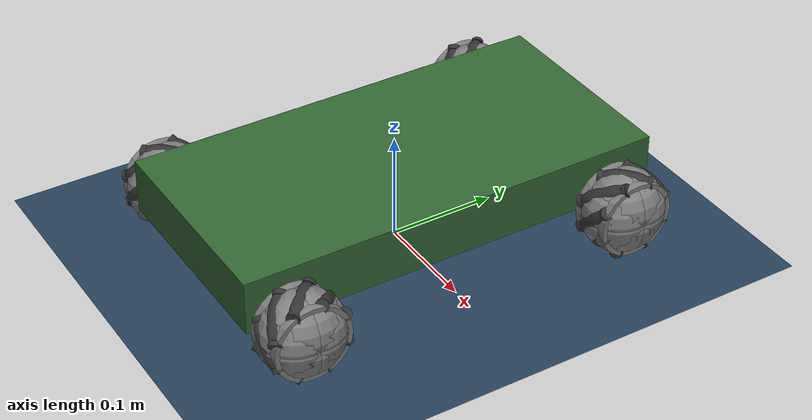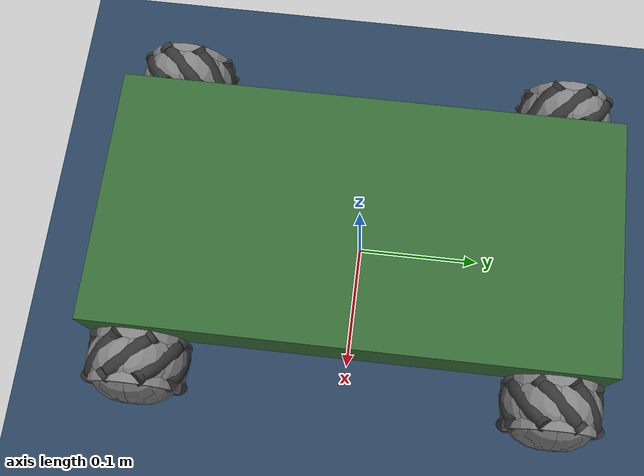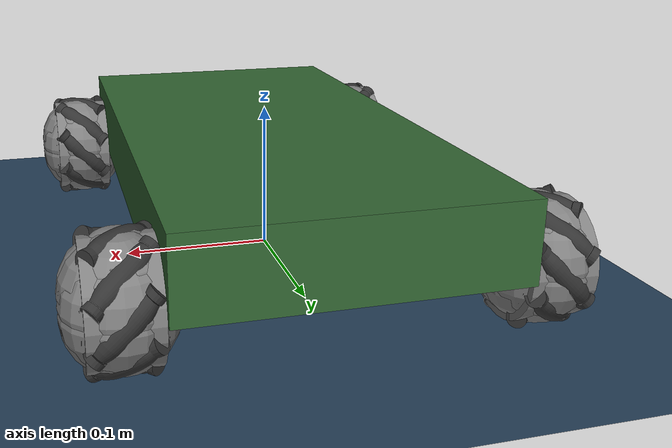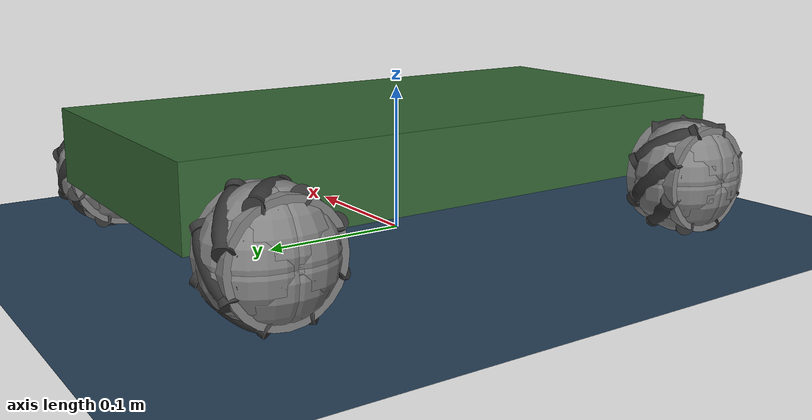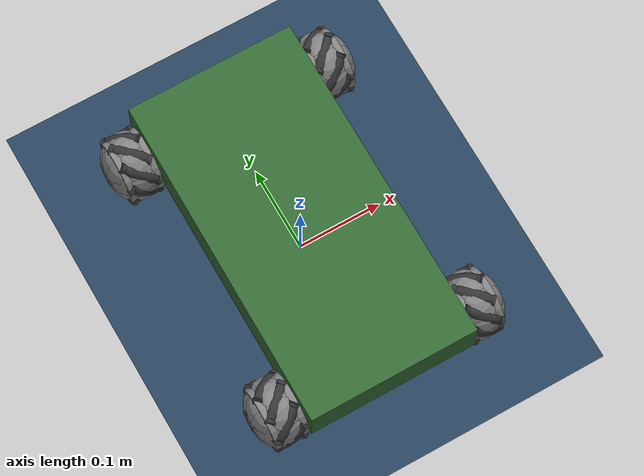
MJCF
<mujoco model="MuJoCo Model">
  <compiler angle="radian"/>

  <visual>
    <scale jointlength="1.6" jointwidth="0.12"/>
  </visual>

  <statistic extent="0.6" center="0 0 0.3"/>

  <default>
    <default class="w1-main"/>
    <default class="w2-main"/>
    <default class="w3-main"/>
    <default class="w4-main"/>
  </default>

  <asset>
    <texture type="skybox" name="//unnamed_texture_0" builtin="flat" rgb1="1 1 1" rgb2="1 1 1" width="512" height="3072"/>
    <texture type="2d" name="groundplane" builtin="checker" mark="edge" rgb1="0.2 0.3 0.4" rgb2="0.1 0.2 0.3" markrgb="0.8 0.8 0.8" width="300" height="300"/>
    <material name="groundplane" texture="groundplane" texuniform="true" texrepeat="5 5" reflectance="0.2"/>
    <mesh name="mesh1" file="meshes\mecanum.stl" scale="0.78 0.78 0.78"/>
    <mesh name="mesh2" file="meshes\mecanum.stl" scale="0.78 0.78 -0.78"/>
  </asset>

  <worldbody>
    <geom name="floor" size="0 0 0.125" type="plane" condim="1" material="groundplane"/>
    <light name="//unnamed_light_0" pos="0 0 3" dir="0 0.624695 -0.780869" directional="true" castshadow="false"/>
    <body name="box" pos="0 0 0.065">
      <joint name="slidex" pos="0 0 0" axis="1 0 0" type="slide"/>
      <joint name="slidey" pos="0 0 0" axis="0 1 0" type="slide"/>
      <joint name="slidez" pos="0 0 0" axis="0 0 1" type="slide"/>
      <joint name="phi" pos="0 0 0" axis="0 0 1"/>
      <geom size="0.1 0.2 0.025" type="box" rgba="0.2 0.4 0.2 1"/>
      <site name="box_center" pos="0 0 0"/>
      <site pos="0.12 0.16 -0.025" quat="0.707107 0 0 -0.707107"/>
      <site pos="-0.12 0.16 -0.025" quat="0.707107 0 0 -0.707107"/>
      <site pos="-0.12 -0.16 -0.025" quat="0.707107 0 0 -0.707107"/>
      <site pos="0.12 -0.16 -0.025" quat="0.707107 0 0 -0.707107"/>
      <body name="w1-hub" pos="0.12 0.16 -0.025" quat="0.707107 0 0 -0.707107">
        <joint name="w1-hub" pos="0 0 0" axis="0 1 0"/>
        <geom size="0.036 0.02" quat="0.707107 0.707107 0 0" type="cylinder" conaffinity="0" group="1"/>
        <geom quat="0.707107 0.707107 0 0" type="mesh" group="2" rgba="0.2 0.2 0.2 1" mesh="mesh1"/>
        <body name="w1-roller_0" pos="0.00682843 0 0.00282843">
          <joint name="w1-slip_0" pos="0 0 0" axis="-0.270598 0.707107 0.653281" limited="false" actuatorfrclimited="false"/>
          <geom size="0.032" group="1"/>
        </body>
        <body name="w1-roller_1" pos="0.00282843 0 0.00682843">
          <joint name="w1-slip_1" pos="0 0 0" axis="-0.653281 0.707107 0.270598" limited="false" actuatorfrclimited="false"/>
          <geom size="0.032" group="1"/>
        </body>
        <body name="w1-roller_2" pos="-0.00282843 0 0.00682843">
          <joint name="w1-slip_2" pos="0 0 0" axis="-0.653281 0.707107 -0.270598" limited="false" actuatorfrclimited="false"/>
          <geom size="0.032" group="1"/>
        </body>
        <body name="w1-roller_3" pos="-0.00682843 0 0.00282843">
          <joint name="w1-slip_3" pos="0 0 0" axis="-0.270598 0.707107 -0.653281" limited="false" actuatorfrclimited="false"/>
          <geom size="0.032" group="1"/>
        </body>
        <body name="w1-roller_4" pos="-0.00682843 0 -0.00282843">
          <joint name="w1-slip_4" pos="0 0 0" axis="0.270598 0.707107 -0.653281" limited="false" actuatorfrclimited="false"/>
          <geom size="0.032" group="1"/>
        </body>
        <body name="w1-roller_5" pos="-0.00282843 0 -0.00682843">
          <joint name="w1-slip_5" pos="0 0 0" axis="0.653281 0.707107 -0.270598" limited="false" actuatorfrclimited="false"/>
          <geom size="0.032" group="1"/>
        </body>
        <body name="w1-roller_6" pos="0.00282843 0 -0.00682843">
          <joint name="w1-slip_6" pos="0 0 0" axis="0.653281 0.707107 0.270598" limited="false" actuatorfrclimited="false"/>
          <geom size="0.032" group="1"/>
        </body>
        <body name="w1-roller_7" pos="0.00682843 0 -0.00282843">
          <joint name="w1-slip_7" pos="0 0 0" axis="0.270598 0.707107 0.653281" limited="false" actuatorfrclimited="false"/>
          <geom size="0.032" group="1"/>
        </body>
      </body>
      <body name="w2-hub" pos="-0.12 0.16 -0.025" quat="0.707107 0 0 -0.707107">
        <joint name="w2-hub" pos="0 0 0" axis="0 1 0"/>
        <geom size="0.036 0.02" quat="0.707107 0.707107 0 0" type="cylinder" conaffinity="0" group="1"/>
        <geom quat="0.707107 0.707107 0 0" type="mesh" group="2" rgba="0.2 0.2 0.2 1" mesh="mesh2"/>
        <body name="w2-roller_0" pos="0.00682843 0 -0.00282843">
          <joint name="w2-slip_0" pos="0 0 0" axis="-0.270598 0.707107 -0.653281" limited="false" actuatorfrclimited="false"/>
          <geom size="0.032" group="1"/>
        </body>
        <body name="w2-roller_1" pos="0.00682843 0 0.00282843">
          <joint name="w2-slip_1" pos="0 0 0" axis="0.270598 0.707107 -0.653281" limited="false" actuatorfrclimited="false"/>
          <geom size="0.032" group="1"/>
        </body>
        <body name="w2-roller_2" pos="0.00282843 0 0.00682843">
          <joint name="w2-slip_2" pos="0 0 0" axis="0.653281 0.707107 -0.270598" limited="false" actuatorfrclimited="false"/>
          <geom size="0.032" group="1"/>
        </body>
        <body name="w2-roller_3" pos="-0.00282843 0 0.00682843">
          <joint name="w2-slip_3" pos="0 0 0" axis="0.653281 0.707107 0.270598" limited="false" actuatorfrclimited="false"/>
          <geom size="0.032" group="1"/>
        </body>
        <body name="w2-roller_4" pos="-0.00682843 0 0.00282843">
          <joint name="w2-slip_4" pos="0 0 0" axis="0.270598 0.707107 0.653281" limited="false" actuatorfrclimited="false"/>
          <geom size="0.032" group="1"/>
        </body>
        <body name="w2-roller_5" pos="-0.00682843 0 -0.00282843">
          <joint name="w2-slip_5" pos="0 0 0" axis="-0.270598 0.707107 0.653281" limited="false" actuatorfrclimited="false"/>
          <geom size="0.032" group="1"/>
        </body>
        <body name="w2-roller_6" pos="-0.00282843 0 -0.00682843">
          <joint name="w2-slip_6" pos="0 0 0" axis="-0.653281 0.707107 0.270598" limited="false" actuatorfrclimited="false"/>
          <geom size="0.032" group="1"/>
        </body>
        <body name="w2-roller_7" pos="0.00282843 0 -0.00682843">
          <joint name="w2-slip_7" pos="0 0 0" axis="-0.653281 0.707107 -0.270598" limited="false" actuatorfrclimited="false"/>
          <geom size="0.032" group="1"/>
        </body>
      </body>
      <body name="w3-hub" pos="-0.12 -0.16 -0.025" quat="0.707107 0 0 -0.707107">
        <joint name="w3-hub" pos="0 0 0" axis="0 1 0"/>
        <geom size="0.036 0.02" quat="0.707107 0.707107 0 0" type="cylinder" conaffinity="0" group="1"/>
        <geom quat="0.707107 0.707107 0 0" type="mesh" group="2" rgba="0.2 0.2 0.2 1" mesh="mesh1"/>
        <body name="w3-roller_0" pos="0.00682843 0 0.00282843">
          <joint name="w3-slip_0" pos="0 0 0" axis="-0.270598 0.707107 0.653281" limited="false" actuatorfrclimited="false"/>
          <geom size="0.032" group="1"/>
        </body>
        <body name="w3-roller_1" pos="0.00282843 0 0.00682843">
          <joint name="w3-slip_1" pos="0 0 0" axis="-0.653281 0.707107 0.270598" limited="false" actuatorfrclimited="false"/>
          <geom size="0.032" group="1"/>
        </body>
        <body name="w3-roller_2" pos="-0.00282843 0 0.00682843">
          <joint name="w3-slip_2" pos="0 0 0" axis="-0.653281 0.707107 -0.270598" limited="false" actuatorfrclimited="false"/>
          <geom size="0.032" group="1"/>
        </body>
        <body name="w3-roller_3" pos="-0.00682843 0 0.00282843">
          <joint name="w3-slip_3" pos="0 0 0" axis="-0.270598 0.707107 -0.653281" limited="false" actuatorfrclimited="false"/>
          <geom size="0.032" group="1"/>
        </body>
        <body name="w3-roller_4" pos="-0.00682843 0 -0.00282843">
          <joint name="w3-slip_4" pos="0 0 0" axis="0.270598 0.707107 -0.653281" limited="false" actuatorfrclimited="false"/>
          <geom size="0.032" group="1"/>
        </body>
        <body name="w3-roller_5" pos="-0.00282843 0 -0.00682843">
          <joint name="w3-slip_5" pos="0 0 0" axis="0.653281 0.707107 -0.270598" limited="false" actuatorfrclimited="false"/>
          <geom size="0.032" group="1"/>
        </body>
        <body name="w3-roller_6" pos="0.00282843 0 -0.00682843">
          <joint name="w3-slip_6" pos="0 0 0" axis="0.653281 0.707107 0.270598" limited="false" actuatorfrclimited="false"/>
          <geom size="0.032" group="1"/>
        </body>
        <body name="w3-roller_7" pos="0.00682843 0 -0.00282843">
          <joint name="w3-slip_7" pos="0 0 0" axis="0.270598 0.707107 0.653281" limited="false" actuatorfrclimited="false"/>
          <geom size="0.032" group="1"/>
        </body>
      </body>
      <body name="w4-hub" pos="0.12 -0.16 -0.025" quat="0.707107 0 0 -0.707107">
        <joint name="w4-hub" pos="0 0 0" axis="0 1 0"/>
        <geom size="0.036 0.02" quat="0.707107 0.707107 0 0" type="cylinder" conaffinity="0" group="1"/>
        <geom quat="0.707107 0.707107 0 0" type="mesh" group="2" rgba="0.2 0.2 0.2 1" mesh="mesh2"/>
        <body name="w4-roller_0" pos="0.00682843 0 -0.00282843">
          <joint name="w4-slip_0" pos="0 0 0" axis="-0.270598 0.707107 -0.653281" limited="false" actuatorfrclimited="false"/>
          <geom size="0.032" group="1"/>
        </body>
        <body name="w4-roller_1" pos="0.00682843 0 0.00282843">
          <joint name="w4-slip_1" pos="0 0 0" axis="0.270598 0.707107 -0.653281" limited="false" actuatorfrclimited="false"/>
          <geom size="0.032" group="1"/>
        </body>
        <body name="w4-roller_2" pos="0.00282843 0 0.00682843">
          <joint name="w4-slip_2" pos="0 0 0" axis="0.653281 0.707107 -0.270598" limited="false" actuatorfrclimited="false"/>
          <geom size="0.032" group="1"/>
        </body>
        <body name="w4-roller_3" pos="-0.00282843 0 0.00682843">
          <joint name="w4-slip_3" pos="0 0 0" axis="0.653281 0.707107 0.270598" limited="false" actuatorfrclimited="false"/>
          <geom size="0.032" group="1"/>
        </body>
        <body name="w4-roller_4" pos="-0.00682843 0 0.00282843">
          <joint name="w4-slip_4" pos="0 0 0" axis="0.270598 0.707107 0.653281" limited="false" actuatorfrclimited="false"/>
          <geom size="0.032" group="1"/>
        </body>
        <body name="w4-roller_5" pos="-0.00682843 0 -0.00282843">
          <joint name="w4-slip_5" pos="0 0 0" axis="-0.270598 0.707107 0.653281" limited="false" actuatorfrclimited="false"/>
          <geom size="0.032" group="1"/>
        </body>
        <body name="w4-roller_6" pos="-0.00282843 0 -0.00682843">
          <joint name="w4-slip_6" pos="0 0 0" axis="-0.653281 0.707107 0.270598" limited="false" actuatorfrclimited="false"/>
          <geom size="0.032" group="1"/>
        </body>
        <body name="w4-roller_7" pos="0.00282843 0 -0.00682843">
          <joint name="w4-slip_7" pos="0 0 0" axis="-0.653281 0.707107 -0.270598" limited="false" actuatorfrclimited="false"/>
          <geom size="0.032" group="1"/>
        </body>
      </body>
    </body>
  </worldbody>

  <contact>
    <exclude name="exclude_w1-hub_world" body1="world" body2="w1-hub"/>
    <exclude name="exclude_world_w2-hub" body1="world" body2="w2-hub"/>
    <exclude name="exclude_w3-hub_world" body1="world" body2="w3-hub"/>
    <exclude name="exclude_world_w4-hub" body1="world" body2="w4-hub"/>
    <exclude name="exclude_box_w1-hub" body1="box" body2="w1-hub"/>
    <exclude name="exclude_box_w1-roller_0" body1="box" body2="w1-roller_0"/>
    <exclude name="exclude_box_w1-roller_1" body1="box" body2="w1-roller_1"/>
    <exclude name="exclude_box_w1-roller_2" body1="box" body2="w1-roller_2"/>
    <exclude name="exclude_box_w1-roller_3" body1="box" body2="w1-roller_3"/>
    <exclude name="exclude_box_w1-roller_4" body1="box" body2="w1-roller_4"/>
    <exclude name="exclude_box_w1-roller_5" body1="box" body2="w1-roller_5"/>
    <exclude name="exclude_box_w1-roller_6" body1="box" body2="w1-roller_6"/>
    <exclude name="exclude_box_w1-roller_7" body1="box" body2="w1-roller_7"/>
    <exclude name="exclude_box_w2-hub" body1="box" body2="w2-hub"/>
    <exclude name="exclude_w2-roller_0_box" body1="box" body2="w2-roller_0"/>
    <exclude name="exclude_w2-roller_1_box" body1="box" body2="w2-roller_1"/>
    <exclude name="exclude_w2-roller_2_box" body1="box" body2="w2-roller_2"/>
    <exclude name="exclude_w2-roller_3_box" body1="box" body2="w2-roller_3"/>
    <exclude name="exclude_w2-roller_4_box" body1="box" body2="w2-roller_4"/>
    <exclude name="exclude_w2-roller_5_box" body1="box" body2="w2-roller_5"/>
    <exclude name="exclude_w2-roller_6_box" body1="box" body2="w2-roller_6"/>
    <exclude name="exclude_w2-roller_7_box" body1="box" body2="w2-roller_7"/>
    <exclude name="exclude_w3-hub_box" body1="box" body2="w3-hub"/>
    <exclude name="exclude_w3-roller_0_box" body1="box" body2="w3-roller_0"/>
    <exclude name="exclude_w3-roller_1_box" body1="box" body2="w3-roller_1"/>
    <exclude name="exclude_w3-roller_2_box" body1="box" body2="w3-roller_2"/>
    <exclude name="exclude_w3-roller_3_box" body1="box" body2="w3-roller_3"/>
    <exclude name="exclude_w3-roller_4_box" body1="box" body2="w3-roller_4"/>
    <exclude name="exclude_w3-roller_5_box" body1="box" body2="w3-roller_5"/>
    <exclude name="exclude_w3-roller_6_box" body1="box" body2="w3-roller_6"/>
    <exclude name="exclude_box_w3-roller_7" body1="box" body2="w3-roller_7"/>
    <exclude name="exclude_w4-hub_box" body1="box" body2="w4-hub"/>
    <exclude name="exclude_w4-roller_0_box" body1="box" body2="w4-roller_0"/>
    <exclude name="exclude_w4-roller_1_box" body1="box" body2="w4-roller_1"/>
    <exclude name="exclude_w4-roller_2_box" body1="box" body2="w4-roller_2"/>
    <exclude name="exclude_w4-roller_3_box" body1="box" body2="w4-roller_3"/>
    <exclude name="exclude_w4-roller_4_box" body1="box" body2="w4-roller_4"/>
    <exclude name="exclude_w4-roller_5_box" body1="box" body2="w4-roller_5"/>
    <exclude name="exclude_w4-roller_6_box" body1="box" body2="w4-roller_6"/>
    <exclude name="exclude_box_w4-roller_7" body1="box" body2="w4-roller_7"/>
    <exclude name="exclude_w1-roller_0_w1-hub" body1="w1-hub" body2="w1-roller_0"/>
    <exclude name="exclude_w1-roller_1_w1-hub" body1="w1-hub" body2="w1-roller_1"/>
    <exclude name="exclude_w1-roller_2_w1-hub" body1="w1-hub" body2="w1-roller_2"/>
    <exclude name="exclude_w1-roller_3_w1-hub" body1="w1-hub" body2="w1-roller_3"/>
    <exclude name="exclude_w1-roller_4_w1-hub" body1="w1-hub" body2="w1-roller_4"/>
    <exclude name="exclude_w1-roller_5_w1-hub" body1="w1-hub" body2="w1-roller_5"/>
    <exclude name="exclude_w1-roller_6_w1-hub" body1="w1-hub" body2="w1-roller_6"/>
    <exclude name="exclude_w1-hub_w1-roller_7" body1="w1-hub" body2="w1-roller_7"/>
    <exclude name="exclude_w1-roller_0_w1-roller_1" body1="w1-roller_0" body2="w1-roller_1"/>
    <exclude name="exclude_w1-roller_2_w1-roller_0" body1="w1-roller_0" body2="w1-roller_2"/>
    <exclude name="exclude_w1-roller_0_w1-roller_3" body1="w1-roller_0" body2="w1-roller_3"/>
    <exclude name="exclude_w1-roller_0_w1-roller_4" body1="w1-roller_0" body2="w1-roller_4"/>
    <exclude name="exclude_w1-roller_0_w1-roller_5" body1="w1-roller_0" body2="w1-roller_5"/>
    <exclude name="exclude_w1-roller_0_w1-roller_6" body1="w1-roller_0" body2="w1-roller_6"/>
    <exclude name="exclude_w1-roller_0_w1-roller_7" body1="w1-roller_0" body2="w1-roller_7"/>
    <exclude name="exclude_w1-roller_2_w1-roller_1" body1="w1-roller_1" body2="w1-roller_2"/>
    <exclude name="exclude_w1-roller_1_w1-roller_3" body1="w1-roller_1" body2="w1-roller_3"/>
    <exclude name="exclude_w1-roller_1_w1-roller_4" body1="w1-roller_1" body2="w1-roller_4"/>
    <exclude name="exclude_w1-roller_1_w1-roller_5" body1="w1-roller_1" body2="w1-roller_5"/>
    <exclude name="exclude_w1-roller_1_w1-roller_6" body1="w1-roller_1" body2="w1-roller_6"/>
    <exclude name="exclude_w1-roller_1_w1-roller_7" body1="w1-roller_1" body2="w1-roller_7"/>
    <exclude name="exclude_w1-roller_2_w1-roller_3" body1="w1-roller_2" body2="w1-roller_3"/>
    <exclude name="exclude_w1-roller_2_w1-roller_4" body1="w1-roller_2" body2="w1-roller_4"/>
    <exclude name="exclude_w1-roller_2_w1-roller_5" body1="w1-roller_2" body2="w1-roller_5"/>
    <exclude name="exclude_w1-roller_2_w1-roller_6" body1="w1-roller_2" body2="w1-roller_6"/>
    <exclude name="exclude_w1-roller_2_w1-roller_7" body1="w1-roller_2" body2="w1-roller_7"/>
    <exclude name="exclude_w1-roller_3_w1-roller_4" body1="w1-roller_3" body2="w1-roller_4"/>
    <exclude name="exclude_w1-roller_3_w1-roller_5" body1="w1-roller_3" body2="w1-roller_5"/>
    <exclude name="exclude_w1-roller_3_w1-roller_6" body1="w1-roller_3" body2="w1-roller_6"/>
    <exclude name="exclude_w1-roller_3_w1-roller_7" body1="w1-roller_3" body2="w1-roller_7"/>
    <exclude name="exclude_w1-roller_4_w1-roller_5" body1="w1-roller_4" body2="w1-roller_5"/>
    <exclude name="exclude_w1-roller_4_w1-roller_6" body1="w1-roller_4" body2="w1-roller_6"/>
    <exclude name="exclude_w1-roller_4_w1-roller_7" body1="w1-roller_4" body2="w1-roller_7"/>
    <exclude name="exclude_w1-roller_6_w1-roller_5" body1="w1-roller_5" body2="w1-roller_6"/>
    <exclude name="exclude_w1-roller_5_w1-roller_7" body1="w1-roller_5" body2="w1-roller_7"/>
    <exclude name="exclude_w1-roller_6_w1-roller_7" body1="w1-roller_6" body2="w1-roller_7"/>
    <exclude name="exclude_w2-roller_0_w2-hub" body1="w2-hub" body2="w2-roller_0"/>
    <exclude name="exclude_w2-roller_1_w2-hub" body1="w2-hub" body2="w2-roller_1"/>
    <exclude name="exclude_w2-roller_2_w2-hub" body1="w2-hub" body2="w2-roller_2"/>
    <exclude name="exclude_w2-roller_3_w2-hub" body1="w2-hub" body2="w2-roller_3"/>
    <exclude name="exclude_w2-roller_4_w2-hub" body1="w2-hub" body2="w2-roller_4"/>
    <exclude name="exclude_w2-roller_5_w2-hub" body1="w2-hub" body2="w2-roller_5"/>
    <exclude name="exclude_w2-roller_6_w2-hub" body1="w2-hub" body2="w2-roller_6"/>
    <exclude name="exclude_w2-roller_7_w2-hub" body1="w2-hub" body2="w2-roller_7"/>
    <exclude name="exclude_w2-roller_1_w2-roller_0" body1="w2-roller_0" body2="w2-roller_1"/>
    <exclude name="exclude_w2-roller_2_w2-roller_0" body1="w2-roller_0" body2="w2-roller_2"/>
    <exclude name="exclude_w2-roller_3_w2-roller_0" body1="w2-roller_0" body2="w2-roller_3"/>
    <exclude name="exclude_w2-roller_4_w2-roller_0" body1="w2-roller_0" body2="w2-roller_4"/>
    <exclude name="exclude_w2-roller_0_w2-roller_5" body1="w2-roller_0" body2="w2-roller_5"/>
    <exclude name="exclude_w2-roller_6_w2-roller_0" body1="w2-roller_0" body2="w2-roller_6"/>
    <exclude name="exclude_w2-roller_7_w2-roller_0" body1="w2-roller_0" body2="w2-roller_7"/>
    <exclude name="exclude_w2-roller_1_w2-roller_2" body1="w2-roller_1" body2="w2-roller_2"/>
    <exclude name="exclude_w2-roller_1_w2-roller_3" body1="w2-roller_1" body2="w2-roller_3"/>
    <exclude name="exclude_w2-roller_1_w2-roller_4" body1="w2-roller_1" body2="w2-roller_4"/>
    <exclude name="exclude_w2-roller_1_w2-roller_5" body1="w2-roller_1" body2="w2-roller_5"/>
    <exclude name="exclude_w2-roller_1_w2-roller_6" body1="w2-roller_1" body2="w2-roller_6"/>
    <exclude name="exclude_w2-roller_1_w2-roller_7" body1="w2-roller_1" body2="w2-roller_7"/>
    <exclude name="exclude_w2-roller_2_w2-roller_3" body1="w2-roller_2" body2="w2-roller_3"/>
    <exclude name="exclude_w2-roller_2_w2-roller_4" body1="w2-roller_2" body2="w2-roller_4"/>
    <exclude name="exclude_w2-roller_2_w2-roller_5" body1="w2-roller_2" body2="w2-roller_5"/>
    <exclude name="exclude_w2-roller_2_w2-roller_6" body1="w2-roller_2" body2="w2-roller_6"/>
    <exclude name="exclude_w2-roller_7_w2-roller_2" body1="w2-roller_2" body2="w2-roller_7"/>
    <exclude name="exclude_w2-roller_3_w2-roller_4" body1="w2-roller_3" body2="w2-roller_4"/>
    <exclude name="exclude_w2-roller_3_w2-roller_5" body1="w2-roller_3" body2="w2-roller_5"/>
    <exclude name="exclude_w2-roller_3_w2-roller_6" body1="w2-roller_3" body2="w2-roller_6"/>
    <exclude name="exclude_w2-roller_7_w2-roller_3" body1="w2-roller_3" body2="w2-roller_7"/>
    <exclude name="exclude_w2-roller_4_w2-roller_5" body1="w2-roller_4" body2="w2-roller_5"/>
    <exclude name="exclude_w2-roller_4_w2-roller_6" body1="w2-roller_4" body2="w2-roller_6"/>
    <exclude name="exclude_w2-roller_7_w2-roller_4" body1="w2-roller_4" body2="w2-roller_7"/>
    <exclude name="exclude_w2-roller_6_w2-roller_5" body1="w2-roller_5" body2="w2-roller_6"/>
    <exclude name="exclude_w2-roller_7_w2-roller_5" body1="w2-roller_5" body2="w2-roller_7"/>
    <exclude name="exclude_w2-roller_7_w2-roller_6" body1="w2-roller_6" body2="w2-roller_7"/>
    <exclude name="exclude_w3-hub_w3-roller_0" body1="w3-hub" body2="w3-roller_0"/>
    <exclude name="exclude_w3-hub_w3-roller_1" body1="w3-hub" body2="w3-roller_1"/>
    <exclude name="exclude_w3-hub_w3-roller_2" body1="w3-hub" body2="w3-roller_2"/>
    <exclude name="exclude_w3-hub_w3-roller_3" body1="w3-hub" body2="w3-roller_3"/>
    <exclude name="exclude_w3-hub_w3-roller_4" body1="w3-hub" body2="w3-roller_4"/>
    <exclude name="exclude_w3-hub_w3-roller_5" body1="w3-hub" body2="w3-roller_5"/>
    <exclude name="exclude_w3-hub_w3-roller_6" body1="w3-hub" body2="w3-roller_6"/>
    <exclude name="exclude_w3-hub_w3-roller_7" body1="w3-hub" body2="w3-roller_7"/>
    <exclude name="exclude_w3-roller_1_w3-roller_0" body1="w3-roller_0" body2="w3-roller_1"/>
    <exclude name="exclude_w3-roller_2_w3-roller_0" body1="w3-roller_0" body2="w3-roller_2"/>
    <exclude name="exclude_w3-roller_3_w3-roller_0" body1="w3-roller_0" body2="w3-roller_3"/>
    <exclude name="exclude_w3-roller_4_w3-roller_0" body1="w3-roller_0" body2="w3-roller_4"/>
    <exclude name="exclude_w3-roller_0_w3-roller_5" body1="w3-roller_0" body2="w3-roller_5"/>
    <exclude name="exclude_w3-roller_0_w3-roller_6" body1="w3-roller_0" body2="w3-roller_6"/>
    <exclude name="exclude_w3-roller_0_w3-roller_7" body1="w3-roller_0" body2="w3-roller_7"/>
    <exclude name="exclude_w3-roller_1_w3-roller_2" body1="w3-roller_1" body2="w3-roller_2"/>
    <exclude name="exclude_w3-roller_1_w3-roller_3" body1="w3-roller_1" body2="w3-roller_3"/>
    <exclude name="exclude_w3-roller_1_w3-roller_4" body1="w3-roller_1" body2="w3-roller_4"/>
    <exclude name="exclude_w3-roller_1_w3-roller_5" body1="w3-roller_1" body2="w3-roller_5"/>
    <exclude name="exclude_w3-roller_1_w3-roller_6" body1="w3-roller_1" body2="w3-roller_6"/>
    <exclude name="exclude_w3-roller_1_w3-roller_7" body1="w3-roller_1" body2="w3-roller_7"/>
    <exclude name="exclude_w3-roller_2_w3-roller_3" body1="w3-roller_2" body2="w3-roller_3"/>
    <exclude name="exclude_w3-roller_2_w3-roller_4" body1="w3-roller_2" body2="w3-roller_4"/>
    <exclude name="exclude_w3-roller_2_w3-roller_5" body1="w3-roller_2" body2="w3-roller_5"/>
    <exclude name="exclude_w3-roller_2_w3-roller_6" body1="w3-roller_2" body2="w3-roller_6"/>
    <exclude name="exclude_w3-roller_2_w3-roller_7" body1="w3-roller_2" body2="w3-roller_7"/>
    <exclude name="exclude_w3-roller_3_w3-roller_4" body1="w3-roller_3" body2="w3-roller_4"/>
    <exclude name="exclude_w3-roller_3_w3-roller_5" body1="w3-roller_3" body2="w3-roller_5"/>
    <exclude name="exclude_w3-roller_3_w3-roller_6" body1="w3-roller_3" body2="w3-roller_6"/>
    <exclude name="exclude_w3-roller_3_w3-roller_7" body1="w3-roller_3" body2="w3-roller_7"/>
    <exclude name="exclude_w3-roller_4_w3-roller_5" body1="w3-roller_4" body2="w3-roller_5"/>
    <exclude name="exclude_w3-roller_4_w3-roller_6" body1="w3-roller_4" body2="w3-roller_6"/>
    <exclude name="exclude_w3-roller_4_w3-roller_7" body1="w3-roller_4" body2="w3-roller_7"/>
    <exclude name="exclude_w3-roller_6_w3-roller_5" body1="w3-roller_5" body2="w3-roller_6"/>
    <exclude name="exclude_w3-roller_5_w3-roller_7" body1="w3-roller_5" body2="w3-roller_7"/>
    <exclude name="exclude_w3-roller_6_w3-roller_7" body1="w3-roller_6" body2="w3-roller_7"/>
    <exclude name="exclude_w4-hub_w4-roller_0" body1="w4-hub" body2="w4-roller_0"/>
    <exclude name="exclude_w4-roller_1_w4-hub" body1="w4-hub" body2="w4-roller_1"/>
    <exclude name="exclude_w4-roller_2_w4-hub" body1="w4-hub" body2="w4-roller_2"/>
    <exclude name="exclude_w4-hub_w4-roller_3" body1="w4-hub" body2="w4-roller_3"/>
    <exclude name="exclude_w4-hub_w4-roller_4" body1="w4-hub" body2="w4-roller_4"/>
    <exclude name="exclude_w4-hub_w4-roller_5" body1="w4-hub" body2="w4-roller_5"/>
    <exclude name="exclude_w4-hub_w4-roller_6" body1="w4-hub" body2="w4-roller_6"/>
    <exclude name="exclude_w4-hub_w4-roller_7" body1="w4-hub" body2="w4-roller_7"/>
    <exclude name="exclude_w4-roller_1_w4-roller_0" body1="w4-roller_0" body2="w4-roller_1"/>
    <exclude name="exclude_w4-roller_2_w4-roller_0" body1="w4-roller_0" body2="w4-roller_2"/>
    <exclude name="exclude_w4-roller_3_w4-roller_0" body1="w4-roller_0" body2="w4-roller_3"/>
    <exclude name="exclude_w4-roller_4_w4-roller_0" body1="w4-roller_0" body2="w4-roller_4"/>
    <exclude name="exclude_w4-roller_0_w4-roller_5" body1="w4-roller_0" body2="w4-roller_5"/>
    <exclude name="exclude_w4-roller_0_w4-roller_6" body1="w4-roller_0" body2="w4-roller_6"/>
    <exclude name="exclude_w4-roller_0_w4-roller_7" body1="w4-roller_0" body2="w4-roller_7"/>
    <exclude name="exclude_w4-roller_1_w4-roller_2" body1="w4-roller_1" body2="w4-roller_2"/>
    <exclude name="exclude_w4-roller_1_w4-roller_3" body1="w4-roller_1" body2="w4-roller_3"/>
    <exclude name="exclude_w4-roller_1_w4-roller_4" body1="w4-roller_1" body2="w4-roller_4"/>
    <exclude name="exclude_w4-roller_1_w4-roller_5" body1="w4-roller_1" body2="w4-roller_5"/>
    <exclude name="exclude_w4-roller_1_w4-roller_6" body1="w4-roller_1" body2="w4-roller_6"/>
    <exclude name="exclude_w4-roller_1_w4-roller_7" body1="w4-roller_1" body2="w4-roller_7"/>
    <exclude name="exclude_w4-roller_2_w4-roller_3" body1="w4-roller_2" body2="w4-roller_3"/>
    <exclude name="exclude_w4-roller_2_w4-roller_4" body1="w4-roller_2" body2="w4-roller_4"/>
    <exclude name="exclude_w4-roller_2_w4-roller_5" body1="w4-roller_2" body2="w4-roller_5"/>
    <exclude name="exclude_w4-roller_2_w4-roller_6" body1="w4-roller_2" body2="w4-roller_6"/>
    <exclude name="exclude_w4-roller_2_w4-roller_7" body1="w4-roller_2" body2="w4-roller_7"/>
    <exclude name="exclude_w4-roller_3_w4-roller_4" body1="w4-roller_3" body2="w4-roller_4"/>
    <exclude name="exclude_w4-roller_3_w4-roller_5" body1="w4-roller_3" body2="w4-roller_5"/>
    <exclude name="exclude_w4-roller_3_w4-roller_6" body1="w4-roller_3" body2="w4-roller_6"/>
    <exclude name="exclude_w4-roller_3_w4-roller_7" body1="w4-roller_3" body2="w4-roller_7"/>
    <exclude name="exclude_w4-roller_4_w4-roller_5" body1="w4-roller_4" body2="w4-roller_5"/>
    <exclude name="exclude_w4-roller_4_w4-roller_6" body1="w4-roller_4" body2="w4-roller_6"/>
    <exclude name="exclude_w4-roller_4_w4-roller_7" body1="w4-roller_4" body2="w4-roller_7"/>
    <exclude name="exclude_w4-roller_6_w4-roller_5" body1="w4-roller_5" body2="w4-roller_6"/>
    <exclude name="exclude_w4-roller_5_w4-roller_7" body1="w4-roller_5" body2="w4-roller_7"/>
    <exclude name="exclude_w4-roller_6_w4-roller_7" body1="w4-roller_6" body2="w4-roller_7"/>
  </contact>

  <actuator>
    <general name="torque1" joint="w1-hub" ctrllimited="false"/>
    <general name="torque2" joint="w2-hub" ctrllimited="false"/>
    <general name="torque3" joint="w3-hub" ctrllimited="false"/>
    <general name="torque4" joint="w4-hub" ctrllimited="false"/>
  </actuator>

  <sensor>
    <framepos objtype="site" objname="box_center" name="pos_c"/>
    <framelinvel objtype="site" objname="box_center" name="vel_c"/>
    <frameangvel objtype="site" objname="box_center" name="gyro_c"/>
    <framexaxis objtype="site" objname="box_center" name="xaxis_c"/>
  </sensor>
</mujoco>
